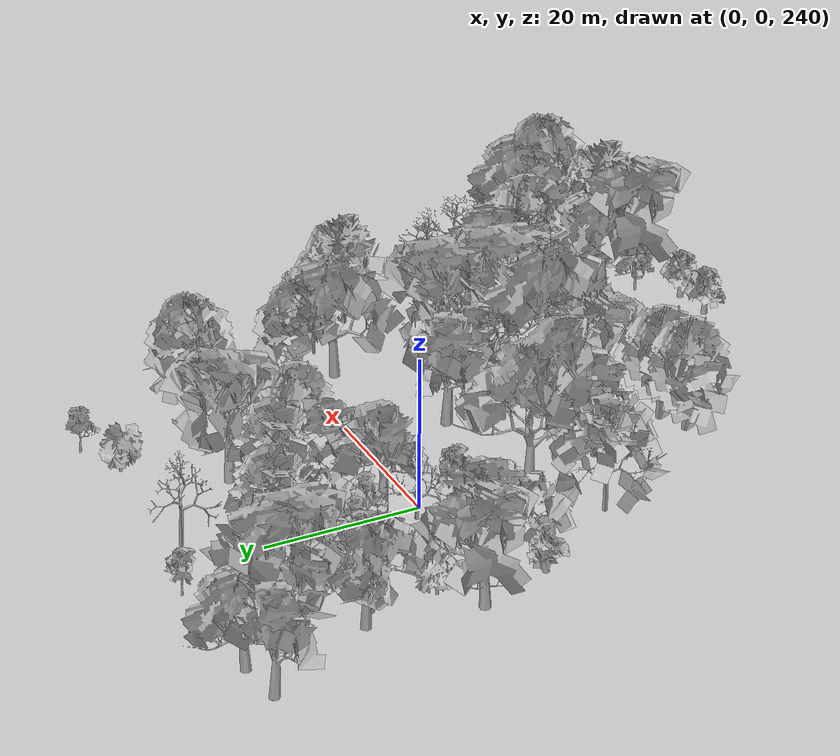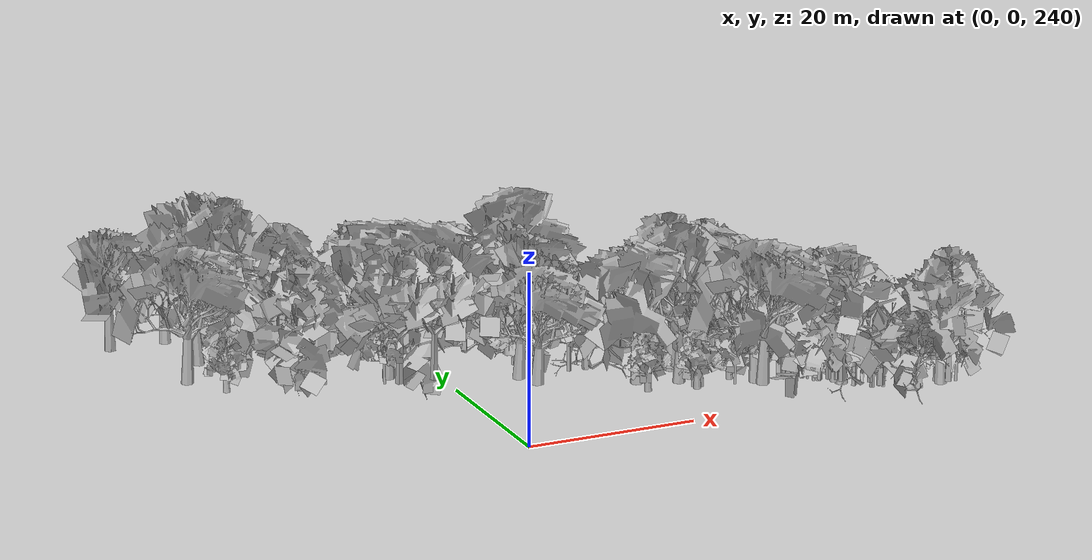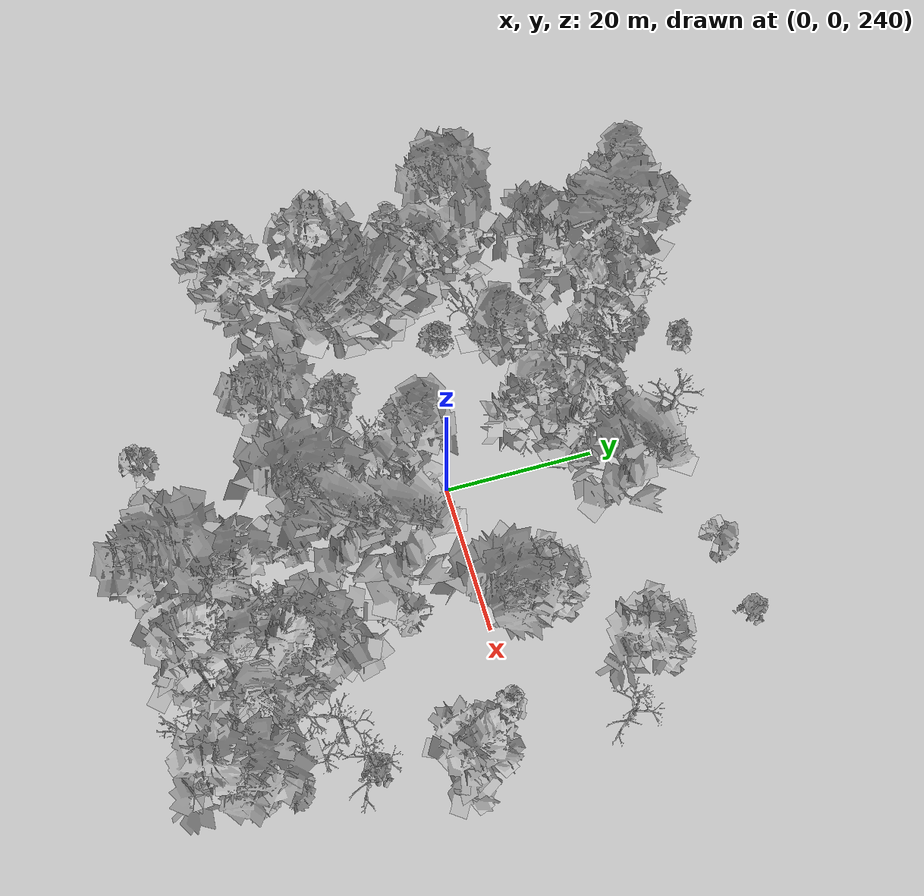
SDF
<sdf version="1.6">
 <world name="default">
  <light name="sun" type="directional">
   <pose>0 0 10 0 -0 0</pose>
   <diffuse>0.8 0.8 0.8 1</diffuse>
   <specular>0.2 0.2 0.2 1</specular>
   <attenuation>
    <range>1000</range>
    <constant>0.9</constant>
    <linear>0.01</linear>
    <quadratic>0.001</quadratic>
   </attenuation>
   <direction>-0.5 0.1 -0.9</direction>
  </light>
  <scene>
   <sky><clouds><speed>12</speed></clouds></sky>
   <ambient>0.4 0.4 0.4 1</ambient>
   <background>0.7 0.7 0.7 1</background>
   <shadows>1</shadows>
  </scene>
  <spherical_coordinates>
   <surface_model>EARTH_WGS84</surface_model>
   <latitude_deg>47.3977</latitude_deg>
   <longitude_deg>8.54559</longitude_deg>
   <elevation>0</elevation>
   <heading_deg>0</heading_deg>
  </spherical_coordinates>
  <physics name="default_physics" default="0" type="ode">
   <ode>
    <solver>
     <type>quick</type>
     <iters>100</iters>
     <sor>1.3</sor>
     <use_dynamic_moi_rescaling>0</use_dynamic_moi_rescaling>
    </solver>
    <constraints>
     <cfm>0</cfm>
     <erp>0.2</erp>
     <contact_max_correcting_vel>100</contact_max_correcting_vel>
     <contact_surface_layer>0.001</contact_surface_layer>
    </constraints>
   </ode>
   <max_step_size>0.002</max_step_size>
   <real_time_factor>1</real_time_factor>
   <real_time_update_rate>500</real_time_update_rate>
  </physics>
  <gravity>0 0 -9.8</gravity>
  <magnetic_field>6e-06 2.3e-05 -4.2e-05</magnetic_field>
  <atmosphere type="adiabatic"/>
  <model name="my_mesh0">
   <pose>20.3848 -30.238 254.827 0 0 -0.522081</pose>
   <static>1</static>
   <link name="body">
    <visual name="visual">
     <geometry><mesh><uri>model://trees/16.dae</uri><scale>1 1 1</scale></mesh></geometry>
    </visual>
    <collision name="collision">
     <geometry><mesh><uri>model://trees/16.dae</uri><scale>1 1 1</scale></mesh></geometry>
    </collision>
   </link>
  </model>
  <model name="my_mesh1">
   <pose>22.3282 -24.5852 252.556 0 -0 1.48568</pose>
   <static>1</static>
   <link name="body">
    <visual name="visual">
     <geometry><mesh><uri>model://trees/14.dae</uri><scale>1 1 1</scale></mesh></geometry>
    </visual>
    <collision name="collision">
     <geometry><mesh><uri>model://trees/14.dae</uri><scale>1 1 1</scale></mesh></geometry>
    </collision>
   </link>
  </model>
  <model name="my_mesh2">
   <pose>20.2456 -19.4819 251.527 0 0 -1.18767</pose>
   <static>1</static>
   <link name="body">
    <visual name="visual">
     <geometry><mesh><uri>model://trees/12.dae</uri><scale>1 1 1</scale></mesh></geometry>
    </visual>
    <collision name="collision">
     <geometry><mesh><uri>model://trees/12.dae</uri><scale>1 1 1</scale></mesh></geometry>
    </collision>
   </link>
  </model>
  <model name="my_mesh3">
   <pose>33.1308 -25.5653 250.639 0 0 -0.469725</pose>
   <static>1</static>
   <link name="body">
    <visual name="visual">
     <geometry><mesh><uri>model://trees/17.dae</uri><scale>1 1 1</scale></mesh></geometry>
    </visual>
    <collision name="collision">
     <geometry><mesh><uri>model://trees/17.dae</uri><scale>1 1 1</scale></mesh></geometry>
    </collision>
   </link>
  </model>
  <model name="my_mesh4">
   <pose>22.3052 -28.3729 253.895 0 -0 0.719179</pose>
   <static>1</static>
   <link name="body">
    <visual name="visual">
     <geometry><mesh><uri>model://trees/4.dae</uri><scale>1 1 1</scale></mesh></geometry>
    </visual>
    <collision name="collision">
     <geometry><mesh><uri>model://trees/4.dae</uri><scale>1 1 1</scale></mesh></geometry>
    </collision>
   </link>
  </model>
  <model name="my_mesh5">
   <pose>20.774 -21.2227 252.025 0 0 -0.654174</pose>
   <static>1</static>
   <link name="body">
    <visual name="visual">
     <geometry><mesh><uri>model://trees/8.dae</uri><scale>1 1 1</scale></mesh></geometry>
    </visual>
    <collision name="collision">
     <geometry><mesh><uri>model://trees/8.dae</uri><scale>1 1 1</scale></mesh></geometry>
    </collision>
   </link>
  </model>
  <model name="my_mesh6">
   <pose>22.9858 -22.2443 251.674 0 -0 0.049975</pose>
   <static>1</static>
   <link name="body">
    <visual name="visual">
     <geometry><mesh><uri>model://trees/5.dae</uri><scale>1 1 1</scale></mesh></geometry>
    </visual>
    <collision name="collision">
     <geometry><mesh><uri>model://trees/5.dae</uri><scale>1 1 1</scale></mesh></geometry>
    </collision>
   </link>
  </model>
  <model name="my_mesh7">
   <pose>35.5555 -17.7799 247.557 0 -0 0.187396</pose>
   <static>1</static>
   <link name="body">
    <visual name="visual">
     <geometry><mesh><uri>model://trees/3.dae</uri><scale>1 1 1</scale></mesh></geometry>
    </visual>
    <collision name="collision">
     <geometry><mesh><uri>model://trees/3.dae</uri><scale>1 1 1</scale></mesh></geometry>
    </collision>
   </link>
  </model>
  <model name="my_mesh8">
   <pose>10.3224 -15.6865 251.198 0 -0 1.11868</pose>
   <static>1</static>
   <link name="body">
    <visual name="visual">
     <geometry><mesh><uri>model://trees/10.dae</uri><scale>1 1 1</scale></mesh></geometry>
    </visual>
    <collision name="collision">
     <geometry><mesh><uri>model://trees/10.dae</uri><scale>1 1 1</scale></mesh></geometry>
    </collision>
   </link>
  </model>
  <model name="my_mesh9">
   <pose>28.956 -25.6681 251.325 0 0 -0.502206</pose>
   <static>1</static>
   <link name="body">
    <visual name="visual">
     <geometry><mesh><uri>model://trees/17.dae</uri><scale>1 1 1</scale></mesh></geometry>
    </visual>
    <collision name="collision">
     <geometry><mesh><uri>model://trees/17.dae</uri><scale>1 1 1</scale></mesh></geometry>
    </collision>
   </link>
  </model>
  <model name="my_mesh10">
   <pose>13.4311 -29.9492 255.804 0 0 -0.91012</pose>
   <static>1</static>
   <link name="body">
    <visual name="visual">
     <geometry><mesh><uri>model://trees/2.dae</uri><scale>1 1 1</scale></mesh></geometry>
    </visual>
    <collision name="collision">
     <geometry><mesh><uri>model://trees/2.dae</uri><scale>1 1 1</scale></mesh></geometry>
    </collision>
   </link>
  </model>
  <model name="my_mesh11">
   <pose>28.1996 -27.9478 252.077 0 -0 0.348153</pose>
   <static>1</static>
   <link name="body">
    <visual name="visual">
     <geometry><mesh><uri>model://trees/16.dae</uri><scale>1 1 1</scale></mesh></geometry>
    </visual>
    <collision name="collision">
     <geometry><mesh><uri>model://trees/16.dae</uri><scale>1 1 1</scale></mesh></geometry>
    </collision>
   </link>
  </model>
  <model name="my_mesh12">
   <pose>19.9809 -23.3626 252.795 0 -0 0.714869</pose>
   <static>1</static>
   <link name="body">
    <visual name="visual">
     <geometry><mesh><uri>model://trees/12.dae</uri><scale>1 1 1</scale></mesh></geometry>
    </visual>
    <collision name="collision">
     <geometry><mesh><uri>model://trees/12.dae</uri><scale>1 1 1</scale></mesh></geometry>
    </collision>
   </link>
  </model>
  <model name="my_mesh13">
   <pose>19.8323 -25.5446 253.49 0 0 -0.447991</pose>
   <static>1</static>
   <link name="body">
    <visual name="visual">
     <geometry><mesh><uri>model://trees/17.dae</uri><scale>1 1 1</scale></mesh></geometry>
    </visual>
    <collision name="collision">
     <geometry><mesh><uri>model://trees/17.dae</uri><scale>1 1 1</scale></mesh></geometry>
    </collision>
   </link>
  </model>
  <model name="my_mesh14">
   <pose>35.421 -30.5795 252.534 0 0 -0.863697</pose>
   <static>1</static>
   <link name="body">
    <visual name="visual">
     <geometry><mesh><uri>model://trees/5.dae</uri><scale>1 1 1</scale></mesh></geometry>
    </visual>
    <collision name="collision">
     <geometry><mesh><uri>model://trees/5.dae</uri><scale>1 1 1</scale></mesh></geometry>
    </collision>
   </link>
  </model>
  <model name="my_mesh15">
   <pose>27.8139 -35.4462 255.08 0 0 -0.312453</pose>
   <static>1</static>
   <link name="body">
    <visual name="visual">
     <geometry><mesh><uri>model://trees/19.dae</uri><scale>1 1 1</scale></mesh></geometry>
    </visual>
    <collision name="collision">
     <geometry><mesh><uri>model://trees/19.dae</uri><scale>1 1 1</scale></mesh></geometry>
    </collision>
   </link>
  </model>
  <model name="my_mesh16">
   <pose>17.5999 -25.4157 253.881 0 0 -0.761209</pose>
   <static>1</static>
   <link name="body">
    <visual name="visual">
     <geometry><mesh><uri>model://trees/16.dae</uri><scale>1 1 1</scale></mesh></geometry>
    </visual>
    <collision name="collision">
     <geometry><mesh><uri>model://trees/16.dae</uri><scale>1 1 1</scale></mesh></geometry>
    </collision>
   </link>
  </model>
  <model name="my_mesh17">
   <pose>27.0569 -25.4741 251.828 0 0 -1.21136</pose>
   <static>1</static>
   <link name="body">
    <visual name="visual">
     <geometry><mesh><uri>model://trees/18.dae</uri><scale>1 1 1</scale></mesh></geometry>
    </visual>
    <collision name="collision">
     <geometry><mesh><uri>model://trees/18.dae</uri><scale>1 1 1</scale></mesh></geometry>
    </collision>
   </link>
  </model>
  <model name="my_mesh18">
   <pose>8.34189 -32.582 256.818 0 0 -0.239328</pose>
   <static>1</static>
   <link name="body">
    <visual name="visual">
     <geometry><mesh><uri>model://trees/6.dae</uri><scale>1 1 1</scale></mesh></geometry>
    </visual>
    <collision name="collision">
     <geometry><mesh><uri>model://trees/6.dae</uri><scale>1 1 1</scale></mesh></geometry>
    </collision>
   </link>
  </model>
  <model name="my_mesh19">
   <pose>22.3388 -27.801 253.499 0 -0 0.737782</pose>
   <static>1</static>
   <link name="body">
    <visual name="visual">
     <geometry><mesh><uri>model://trees/0.dae</uri><scale>1 1 1</scale></mesh></geometry>
    </visual>
    <collision name="collision">
     <geometry><mesh><uri>model://trees/0.dae</uri><scale>1 1 1</scale></mesh></geometry>
    </collision>
   </link>
  </model>
  <model name="my_mesh20">
   <pose>16.5273 -35.3799 257.014 0 0 -0.506061</pose>
   <static>1</static>
   <link name="body">
    <visual name="visual">
     <geometry><mesh><uri>model://trees/5.dae</uri><scale>1 1 1</scale></mesh></geometry>
    </visual>
    <collision name="collision">
     <geometry><mesh><uri>model://trees/5.dae</uri><scale>1 1 1</scale></mesh></geometry>
    </collision>
   </link>
  </model>
  <model name="my_mesh21">
   <pose>9.32402 -22.0173 253.023 0 0 -0.854677</pose>
   <static>1</static>
   <link name="body">
    <visual name="visual">
     <geometry><mesh><uri>model://trees/7.dae</uri><scale>1 1 1</scale></mesh></geometry>
    </visual>
    <collision name="collision">
     <geometry><mesh><uri>model://trees/7.dae</uri><scale>1 1 1</scale></mesh></geometry>
    </collision>
   </link>
  </model>
  <model name="my_mesh22">
   <pose>35.2446 -18.2714 247.826 0 -0 1.15031</pose>
   <static>1</static>
   <link name="body">
    <visual name="visual">
     <geometry><mesh><uri>model://trees/17.dae</uri><scale>1 1 1</scale></mesh></geometry>
    </visual>
    <collision name="collision">
     <geometry><mesh><uri>model://trees/17.dae</uri><scale>1 1 1</scale></mesh></geometry>
    </collision>
   </link>
  </model>
  <model name="my_mesh23">
   <pose>33.3718 -30.9569 252.736 0 0 -0.127508</pose>
   <static>1</static>
   <link name="body">
    <visual name="visual">
     <geometry><mesh><uri>model://trees/8.dae</uri><scale>1 1 1</scale></mesh></geometry>
    </visual>
    <collision name="collision">
     <geometry><mesh><uri>model://trees/8.dae</uri><scale>1 1 1</scale></mesh></geometry>
    </collision>
   </link>
  </model>
  <model name="my_mesh24">
   <pose>25.5522 -23.6478 251.459 0 0 -0.21608</pose>
   <static>1</static>
   <link name="body">
    <visual name="visual">
     <geometry><mesh><uri>model://trees/7.dae</uri><scale>1 1 1</scale></mesh></geometry>
    </visual>
    <collision name="collision">
     <geometry><mesh><uri>model://trees/7.dae</uri><scale>1 1 1</scale></mesh></geometry>
    </collision>
   </link>
  </model>
  <model name="my_mesh25">
   <pose>32.9403 -33.1854 253.715 0 -0 0.323485</pose>
   <static>1</static>
   <link name="body">
    <visual name="visual">
     <geometry><mesh><uri>model://trees/14.dae</uri><scale>1 1 1</scale></mesh></geometry>
    </visual>
    <collision name="collision">
     <geometry><mesh><uri>model://trees/14.dae</uri><scale>1 1 1</scale></mesh></geometry>
    </collision>
   </link>
  </model>
  <model name="my_mesh26">
   <pose>23.7936 -32.9911 254.881 0 -0 0.992813</pose>
   <static>1</static>
   <link name="body">
    <visual name="visual">
     <geometry><mesh><uri>model://trees/16.dae</uri><scale>1 1 1</scale></mesh></geometry>
    </visual>
    <collision name="collision">
     <geometry><mesh><uri>model://trees/16.dae</uri><scale>1 1 1</scale></mesh></geometry>
    </collision>
   </link>
  </model>
  <model name="my_mesh27">
   <pose>35.096 -26.7455 251.299 0 0 -0.223568</pose>
   <static>1</static>
   <link name="body">
    <visual name="visual">
     <geometry><mesh><uri>model://trees/4.dae</uri><scale>1 1 1</scale></mesh></geometry>
    </visual>
    <collision name="collision">
     <geometry><mesh><uri>model://trees/4.dae</uri><scale>1 1 1</scale></mesh></geometry>
    </collision>
   </link>
  </model>
  <model name="my_mesh28">
   <pose>22.8681 -29.2618 253.936 0 0 -0.101964</pose>
   <static>1</static>
   <link name="body">
    <visual name="visual">
     <geometry><mesh><uri>model://trees/6.dae</uri><scale>1 1 1</scale></mesh></geometry>
    </visual>
    <collision name="collision">
     <geometry><mesh><uri>model://trees/6.dae</uri><scale>1 1 1</scale></mesh></geometry>
    </collision>
   </link>
  </model>
  <model name="my_mesh29">
   <pose>27.3505 -28.9366 252.711 0 0 -0.16594</pose>
   <static>1</static>
   <link name="body">
    <visual name="visual">
     <geometry><mesh><uri>model://trees/13.dae</uri><scale>1 1 1</scale></mesh></geometry>
    </visual>
    <collision name="collision">
     <geometry><mesh><uri>model://trees/13.dae</uri><scale>1 1 1</scale></mesh></geometry>
    </collision>
   </link>
  </model>
  <model name="my_mesh30">
   <pose>10.6677 -34.1778 257.047 0 0 -1.30038</pose>
   <static>1</static>
   <link name="body">
    <visual name="visual">
     <geometry><mesh><uri>model://trees/9.dae</uri><scale>1 1 1</scale></mesh></geometry>
    </visual>
    <collision name="collision">
     <geometry><mesh><uri>model://trees/9.dae</uri><scale>1 1 1</scale></mesh></geometry>
    </collision>
   </link>
  </model>
  <model name="my_mesh31">
   <pose>35.5688 -29.2248 252.007 0 -0 0.950878</pose>
   <static>1</static>
   <link name="body">
    <visual name="visual">
     <geometry><mesh><uri>model://trees/3.dae</uri><scale>1 1 1</scale></mesh></geometry>
    </visual>
    <collision name="collision">
     <geometry><mesh><uri>model://trees/3.dae</uri><scale>1 1 1</scale></mesh></geometry>
    </collision>
   </link>
  </model>
  <model name="my_mesh32">
   <pose>20.0769 -28.1595 254.396 0 -0 0.34804</pose>
   <static>1</static>
   <link name="body">
    <visual name="visual">
     <geometry><mesh><uri>model://trees/12.dae</uri><scale>1 1 1</scale></mesh></geometry>
    </visual>
    <collision name="collision">
     <geometry><mesh><uri>model://trees/12.dae</uri><scale>1 1 1</scale></mesh></geometry>
    </collision>
   </link>
  </model>
  <model name="my_mesh33">
   <pose>3.80426 -7.4275 251.131 0 -0 0.904415</pose>
   <static>1</static>
   <link name="body">
    <visual name="visual">
     <geometry><mesh><uri>model://trees/19.dae</uri><scale>1 1 1</scale></mesh></geometry>
    </visual>
    <collision name="collision">
     <geometry><mesh><uri>model://trees/19.dae</uri><scale>1 1 1</scale></mesh></geometry>
    </collision>
   </link>
  </model>
  <model name="my_mesh34">
   <pose>-14.4186 2.46177 250.851 0 0 -1.55554</pose>
   <static>1</static>
   <link name="body">
    <visual name="visual">
     <geometry><mesh><uri>model://trees/1.dae</uri><scale>1 1 1</scale></mesh></geometry>
    </visual>
    <collision name="collision">
     <geometry><mesh><uri>model://trees/1.dae</uri><scale>1 1 1</scale></mesh></geometry>
    </collision>
   </link>
  </model>
  <model name="my_mesh35">
   <pose>-29.1908 -8.812 253.462 0 0 -0.460366</pose>
   <static>1</static>
   <link name="body">
    <visual name="visual">
     <geometry><mesh><uri>model://trees/15.dae</uri><scale>1 1 1</scale></mesh></geometry>
    </visual>
    <collision name="collision">
     <geometry><mesh><uri>model://trees/15.dae</uri><scale>1 1 1</scale></mesh></geometry>
    </collision>
   </link>
  </model>
  <model name="my_mesh36">
   <pose>-2.66466 11.8172 247.692 0 -0 1.16565</pose>
   <static>1</static>
   <link name="body">
    <visual name="visual">
     <geometry><mesh><uri>model://trees/18.dae</uri><scale>1 1 1</scale></mesh></geometry>
    </visual>
    <collision name="collision">
     <geometry><mesh><uri>model://trees/18.dae</uri><scale>1 1 1</scale></mesh></geometry>
    </collision>
   </link>
  </model>
  <model name="my_mesh37">
   <pose>-35.8119 9.6367 249.545 0 0 -1.20076</pose>
   <static>1</static>
   <link name="body">
    <visual name="visual">
     <geometry><mesh><uri>model://trees/9.dae</uri><scale>1 1 1</scale></mesh></geometry>
    </visual>
    <collision name="collision">
     <geometry><mesh><uri>model://trees/9.dae</uri><scale>1 1 1</scale></mesh></geometry>
    </collision>
   </link>
  </model>
  <model name="my_mesh38">
   <pose>-14.1589 30.2155 244.882 0 -0 0.124423</pose>
   <static>1</static>
   <link name="body">
    <visual name="visual">
     <geometry><mesh><uri>model://trees/1.dae</uri><scale>1 1 1</scale></mesh></geometry>
    </visual>
    <collision name="collision">
     <geometry><mesh><uri>model://trees/1.dae</uri><scale>1 1 1</scale></mesh></geometry>
    </collision>
   </link>
  </model>
  <model name="my_mesh39">
   <pose>-27.4147 2.11068 250.785 0 0 -0.483798</pose>
   <static>1</static>
   <link name="body">
    <visual name="visual">
     <geometry><mesh><uri>model://trees/13.dae</uri><scale>1 1 1</scale></mesh></geometry>
    </visual>
    <collision name="collision">
     <geometry><mesh><uri>model://trees/13.dae</uri><scale>1 1 1</scale></mesh></geometry>
    </collision>
   </link>
  </model>
  <model name="my_mesh40">
   <pose>-34.4071 1.32517 251.112 0 0 -0.655381</pose>
   <static>1</static>
   <link name="body">
    <visual name="visual">
     <geometry><mesh><uri>model://trees/0.dae</uri><scale>1 1 1</scale></mesh></geometry>
    </visual>
    <collision name="collision">
     <geometry><mesh><uri>model://trees/0.dae</uri><scale>1 1 1</scale></mesh></geometry>
    </collision>
   </link>
  </model>
  <model name="my_mesh41">
   <pose>-10.7517 16.7342 247.224 0 0 -0.608142</pose>
   <static>1</static>
   <link name="body">
    <visual name="visual">
     <geometry><mesh><uri>model://trees/4.dae</uri><scale>1 1 1</scale></mesh></geometry>
    </visual>
    <collision name="collision">
     <geometry><mesh><uri>model://trees/4.dae</uri><scale>1 1 1</scale></mesh></geometry>
    </collision>
   </link>
  </model>
  <model name="my_mesh42">
   <pose>-29.0261 35.8593 244.833 0 -0 0.050236</pose>
   <static>1</static>
   <link name="body">
    <visual name="visual">
     <geometry><mesh><uri>model://trees/8.dae</uri><scale>1 1 1</scale></mesh></geometry>
    </visual>
    <collision name="collision">
     <geometry><mesh><uri>model://trees/8.dae</uri><scale>1 1 1</scale></mesh></geometry>
    </collision>
   </link>
  </model>
  <model name="my_mesh43">
   <pose>-8.37183 19.7607 246.333 0 0 -0.236964</pose>
   <static>1</static>
   <link name="body">
    <visual name="visual">
     <geometry><mesh><uri>model://trees/13.dae</uri><scale>1 1 1</scale></mesh></geometry>
    </visual>
    <collision name="collision">
     <geometry><mesh><uri>model://trees/13.dae</uri><scale>1 1 1</scale></mesh></geometry>
    </collision>
   </link>
  </model>
  <model name="my_mesh44">
   <pose>-10.3714 35.1073 243.739 0 0 -1.21015</pose>
   <static>1</static>
   <link name="body">
    <visual name="visual">
     <geometry><mesh><uri>model://trees/6.dae</uri><scale>1 1 1</scale></mesh></geometry>
    </visual>
    <collision name="collision">
     <geometry><mesh><uri>model://trees/6.dae</uri><scale>1 1 1</scale></mesh></geometry>
    </collision>
   </link>
  </model>
  <model name="my_mesh45">
   <pose>-15.4997 15.7784 248.023 0 0 -0.909987</pose>
   <static>1</static>
   <link name="body">
    <visual name="visual">
     <geometry><mesh><uri>model://trees/1.dae</uri><scale>1 1 1</scale></mesh></geometry>
    </visual>
    <collision name="collision">
     <geometry><mesh><uri>model://trees/1.dae</uri><scale>1 1 1</scale></mesh></geometry>
    </collision>
   </link>
  </model>
  <model name="my_mesh46">
   <pose>-24.5072 27.3748 246.158 0 -0 1.27724</pose>
   <static>1</static>
   <link name="body">
    <visual name="visual">
     <geometry><mesh><uri>model://trees/10.dae</uri><scale>1 1 1</scale></mesh></geometry>
    </visual>
    <collision name="collision">
     <geometry><mesh><uri>model://trees/10.dae</uri><scale>1 1 1</scale></mesh></geometry>
    </collision>
   </link>
  </model>
  <model name="my_mesh47">
   <pose>7.66498 20.8045 245.109 0 -0 0.753012</pose>
   <static>1</static>
   <link name="body">
    <visual name="visual">
     <geometry><mesh><uri>model://trees/10.dae</uri><scale>1 1 1</scale></mesh></geometry>
    </visual>
    <collision name="collision">
     <geometry><mesh><uri>model://trees/10.dae</uri><scale>1 1 1</scale></mesh></geometry>
    </collision>
   </link>
  </model>
  <model name="my_mesh48">
   <pose>1.91088 18.6257 245.767 0 -0 0.810629</pose>
   <static>1</static>
   <link name="body">
    <visual name="visual">
     <geometry><mesh><uri>model://trees/17.dae</uri><scale>1 1 1</scale></mesh></geometry>
    </visual>
    <collision name="collision">
     <geometry><mesh><uri>model://trees/17.dae</uri><scale>1 1 1</scale></mesh></geometry>
    </collision>
   </link>
  </model>
  <model name="my_mesh49">
   <pose>-1.9419 19.0789 245.871 0 -0 0.201899</pose>
   <static>1</static>
   <link name="body">
    <visual name="visual">
     <geometry><mesh><uri>model://trees/15.dae</uri><scale>1 1 1</scale></mesh></geometry>
    </visual>
    <collision name="collision">
     <geometry><mesh><uri>model://trees/15.dae</uri><scale>1 1 1</scale></mesh></geometry>
    </collision>
   </link>
  </model>
  <model name="my_mesh50">
   <pose>-6.7179 -12.1746 252.999 0 0 -1.56644</pose>
   <static>1</static>
   <link name="body">
    <visual name="visual">
     <geometry><mesh><uri>model://trees/7.dae</uri><scale>1 1 1</scale></mesh></geometry>
    </visual>
    <collision name="collision">
     <geometry><mesh><uri>model://trees/7.dae</uri><scale>1 1 1</scale></mesh></geometry>
    </collision>
   </link>
  </model>
  <model name="my_mesh51">
   <pose>-19.9579 -20.5742 257.541 0 -0 1.08002</pose>
   <static>1</static>
   <link name="body">
    <visual name="visual">
     <geometry><mesh><uri>model://trees/14.dae</uri><scale>1 1 1</scale></mesh></geometry>
    </visual>
    <collision name="collision">
     <geometry><mesh><uri>model://trees/14.dae</uri><scale>1 1 1</scale></mesh></geometry>
    </collision>
   </link>
  </model>
  <model name="my_mesh52">
   <pose>-26.1866 -22.4763 258.608 0 -0 0.977527</pose>
   <static>1</static>
   <link name="body">
    <visual name="visual">
     <geometry><mesh><uri>model://trees/6.dae</uri><scale>1 1 1</scale></mesh></geometry>
    </visual>
    <collision name="collision">
     <geometry><mesh><uri>model://trees/6.dae</uri><scale>1 1 1</scale></mesh></geometry>
    </collision>
   </link>
  </model>
  <model name="my_mesh53">
   <pose>-30.194 21.6409 247.004 0 -0 1.47367</pose>
   <static>1</static>
   <link name="body">
    <visual name="visual">
     <geometry><mesh><uri>model://trees/7.dae</uri><scale>1 1 1</scale></mesh></geometry>
    </visual>
    <collision name="collision">
     <geometry><mesh><uri>model://trees/7.dae</uri><scale>1 1 1</scale></mesh></geometry>
    </collision>
   </link>
  </model>
  <model name="my_mesh54">
   <pose>-11.2174 23.6307 245.818 0 -0 0.34215</pose>
   <static>1</static>
   <link name="body">
    <visual name="visual">
     <geometry><mesh><uri>model://trees/15.dae</uri><scale>1 1 1</scale></mesh></geometry>
    </visual>
    <collision name="collision">
     <geometry><mesh><uri>model://trees/15.dae</uri><scale>1 1 1</scale></mesh></geometry>
    </collision>
   </link>
  </model>
  <model name="my_mesh55">
   <pose>2.73785 -8.46237 251.418 0 0 -0.737428</pose>
   <static>1</static>
   <link name="body">
    <visual name="visual">
     <geometry><mesh><uri>model://trees/12.dae</uri><scale>1 1 1</scale></mesh></geometry>
    </visual>
    <collision name="collision">
     <geometry><mesh><uri>model://trees/12.dae</uri><scale>1 1 1</scale></mesh></geometry>
    </collision>
   </link>
  </model>
  <model name="my_mesh56">
   <pose>18.4181 29.8524 242.967 0 0 -0.680552</pose>
   <static>1</static>
   <link name="body">
    <visual name="visual">
     <geometry><mesh><uri>model://trees/5.dae</uri><scale>1 1 1</scale></mesh></geometry>
    </visual>
    <collision name="collision">
     <geometry><mesh><uri>model://trees/5.dae</uri><scale>1 1 1</scale></mesh></geometry>
    </collision>
   </link>
  </model>
  <model name="my_mesh57">
   <pose>-0.807788 -3.06573 251.083 0 0 -0.938531</pose>
   <static>1</static>
   <link name="body">
    <visual name="visual">
     <geometry><mesh><uri>model://trees/11.dae</uri><scale>1 1 1</scale></mesh></geometry>
    </visual>
    <collision name="collision">
     <geometry><mesh><uri>model://trees/11.dae</uri><scale>1 1 1</scale></mesh></geometry>
    </collision>
   </link>
  </model>
  <model name="my_mesh58">
   <pose>-12.1622 10.7597 248.893 0 0 -0.210146</pose>
   <static>1</static>
   <link name="body">
    <visual name="visual">
     <geometry><mesh><uri>model://trees/11.dae</uri><scale>1 1 1</scale></mesh></geometry>
    </visual>
    <collision name="collision">
     <geometry><mesh><uri>model://trees/11.dae</uri><scale>1 1 1</scale></mesh></geometry>
    </collision>
   </link>
  </model>
  <model name="my_mesh59">
   <pose>20.9921 5.32991 246.553 0 -0 0.168539</pose>
   <static>1</static>
   <link name="body">
    <visual name="visual">
     <geometry><mesh><uri>model://trees/14.dae</uri><scale>1 1 1</scale></mesh></geometry>
    </visual>
    <collision name="collision">
     <geometry><mesh><uri>model://trees/14.dae</uri><scale>1 1 1</scale></mesh></geometry>
    </collision>
   </link>
  </model>
  <model name="my_mesh60">
   <pose>-19.0556 -12.6983 254.11 0 0 -0.481971</pose>
   <static>1</static>
   <link name="body">
    <visual name="visual">
     <geometry><mesh><uri>model://trees/13.dae</uri><scale>1 1 1</scale></mesh></geometry>
    </visual>
    <collision name="collision">
     <geometry><mesh><uri>model://trees/13.dae</uri><scale>1 1 1</scale></mesh></geometry>
    </collision>
   </link>
  </model>
  <model name="my_mesh61">
   <pose>-14.404 2.95393 250.69 0 0 -0.098968</pose>
   <static>1</static>
   <link name="body">
    <visual name="visual">
     <geometry><mesh><uri>model://trees/3.dae</uri><scale>1 1 1</scale></mesh></geometry>
    </visual>
    <collision name="collision">
     <geometry><mesh><uri>model://trees/3.dae</uri><scale>1 1 1</scale></mesh></geometry>
    </collision>
   </link>
  </model>
  <model name="my_mesh62">
   <pose>-18.5677 26.724 245.585 0 0 -0.918133</pose>
   <static>1</static>
   <link name="body">
    <visual name="visual">
     <geometry><mesh><uri>model://trees/14.dae</uri><scale>1 1 1</scale></mesh></geometry>
    </visual>
    <collision name="collision">
     <geometry><mesh><uri>model://trees/14.dae</uri><scale>1 1 1</scale></mesh></geometry>
    </collision>
   </link>
  </model>
  <model name="my_mesh63">
   <pose>-26.2971 31.4319 245.861 0 0 -1.19379</pose>
   <static>1</static>
   <link name="body">
    <visual name="visual">
     <geometry><mesh><uri>model://trees/10.dae</uri><scale>1 1 1</scale></mesh></geometry>
    </visual>
    <collision name="collision">
     <geometry><mesh><uri>model://trees/10.dae</uri><scale>1 1 1</scale></mesh></geometry>
    </collision>
   </link>
  </model>
  <model name="my_mesh64">
   <pose>-25.0485 -2.36718 251.723 0 0 -0.574016</pose>
   <static>1</static>
   <link name="body">
    <visual name="visual">
     <geometry><mesh><uri>model://trees/6.dae</uri><scale>1 1 1</scale></mesh></geometry>
    </visual>
    <collision name="collision">
     <geometry><mesh><uri>model://trees/6.dae</uri><scale>1 1 1</scale></mesh></geometry>
    </collision>
   </link>
  </model>
  <model name="my_mesh65">
   <pose>-25.9973 5.93534 250.072 0 0 -0.933432</pose>
   <static>1</static>
   <link name="body">
    <visual name="visual">
     <geometry><mesh><uri>model://trees/12.dae</uri><scale>1 1 1</scale></mesh></geometry>
    </visual>
    <collision name="collision">
     <geometry><mesh><uri>model://trees/12.dae</uri><scale>1 1 1</scale></mesh></geometry>
    </collision>
   </link>
  </model>
  <model name="my_mesh66">
   <pose>12.3754 -9.43897 250.26 0 -0 1.23835</pose>
   <static>1</static>
   <link name="body">
    <visual name="visual">
     <geometry><mesh><uri>model://trees/10.dae</uri><scale>1 1 1</scale></mesh></geometry>
    </visual>
    <collision name="collision">
     <geometry><mesh><uri>model://trees/10.dae</uri><scale>1 1 1</scale></mesh></geometry>
    </collision>
   </link>
  </model>
  <model name="my_mesh67">
   <pose>-4.2988 -5.34143 251.952 0 0 -0.881153</pose>
   <static>1</static>
   <link name="body">
    <visual name="visual">
     <geometry><mesh><uri>model://trees/4.dae</uri><scale>1 1 1</scale></mesh></geometry>
    </visual>
    <collision name="collision">
     <geometry><mesh><uri>model://trees/4.dae</uri><scale>1 1 1</scale></mesh></geometry>
    </collision>
   </link>
  </model>
  <model name="my_mesh68">
   <pose>-21.8636 18.8302 247.416 0 0 -0.424757</pose>
   <static>1</static>
   <link name="body">
    <visual name="visual">
     <geometry><mesh><uri>model://trees/4.dae</uri><scale>1 1 1</scale></mesh></geometry>
    </visual>
    <collision name="collision">
     <geometry><mesh><uri>model://trees/4.dae</uri><scale>1 1 1</scale></mesh></geometry>
    </collision>
   </link>
  </model>
  <model name="my_mesh69">
   <pose>19.736 -34.2901 256.011 0 -0 1.31883</pose>
   <static>1</static>
   <link name="body">
    <visual name="visual">
     <geometry><mesh><uri>model://trees/15.dae</uri><scale>1 1 1</scale></mesh></geometry>
    </visual>
    <collision name="collision">
     <geometry><mesh><uri>model://trees/15.dae</uri><scale>1 1 1</scale></mesh></geometry>
    </collision>
   </link>
  </model>
  <model name="my_mesh70">
   <pose>19.2557 -9.82055 248.506 0 -0 1.36638</pose>
   <static>1</static>
   <link name="body">
    <visual name="visual">
     <geometry><mesh><uri>model://trees/5.dae</uri><scale>1 1 1</scale></mesh></geometry>
    </visual>
    <collision name="collision">
     <geometry><mesh><uri>model://trees/5.dae</uri><scale>1 1 1</scale></mesh></geometry>
    </collision>
   </link>
  </model>
  <model name="my_mesh71">
   <pose>31.0586 -20.3965 249.108 0 -0 0.957323</pose>
   <static>1</static>
   <link name="body">
    <visual name="visual">
     <geometry><mesh><uri>model://trees/16.dae</uri><scale>1 1 1</scale></mesh></geometry>
    </visual>
    <collision name="collision">
     <geometry><mesh><uri>model://trees/16.dae</uri><scale>1 1 1</scale></mesh></geometry>
    </collision>
   </link>
  </model>
  <model name="my_mesh72">
   <pose>35.183 13.2588 241.376 0 -0 0.688427</pose>
   <static>1</static>
   <link name="body">
    <visual name="visual">
     <geometry><mesh><uri>model://trees/18.dae</uri><scale>1 1 1</scale></mesh></geometry>
    </visual>
    <collision name="collision">
     <geometry><mesh><uri>model://trees/18.dae</uri><scale>1 1 1</scale></mesh></geometry>
    </collision>
   </link>
  </model>
  <model name="my_mesh73">
   <pose>-7.80126 -19.3106 254.862 0 0 -1.52389</pose>
   <static>1</static>
   <link name="body">
    <visual name="visual">
     <geometry><mesh><uri>model://trees/8.dae</uri><scale>1 1 1</scale></mesh></geometry>
    </visual>
    <collision name="collision">
     <geometry><mesh><uri>model://trees/8.dae</uri><scale>1 1 1</scale></mesh></geometry>
    </collision>
   </link>
  </model>
  <model name="my_mesh74">
   <pose>-0.18938 30.5583 243.327 0 0 -0.38692</pose>
   <static>1</static>
   <link name="body">
    <visual name="visual">
     <geometry><mesh><uri>model://trees/16.dae</uri><scale>1 1 1</scale></mesh></geometry>
    </visual>
    <collision name="collision">
     <geometry><mesh><uri>model://trees/16.dae</uri><scale>1 1 1</scale></mesh></geometry>
    </collision>
   </link>
  </model>
  <model name="my_mesh75">
   <pose>-16.122 8.37432 249.776 0 0 -0.861885</pose>
   <static>1</static>
   <link name="body">
    <visual name="visual">
     <geometry><mesh><uri>model://trees/17.dae</uri><scale>1 1 1</scale></mesh></geometry>
    </visual>
    <collision name="collision">
     <geometry><mesh><uri>model://trees/17.dae</uri><scale>1 1 1</scale></mesh></geometry>
    </collision>
   </link>
  </model>
  <model name="my_mesh76">
   <pose>20.6855 0.999575 247.269 0 -0 0.029297</pose>
   <static>1</static>
   <link name="body">
    <visual name="visual">
     <geometry><mesh><uri>model://trees/9.dae</uri><scale>1 1 1</scale></mesh></geometry>
    </visual>
    <collision name="collision">
     <geometry><mesh><uri>model://trees/9.dae</uri><scale>1 1 1</scale></mesh></geometry>
    </collision>
   </link>
  </model>
  <model name="my_mesh77">
   <pose>3.90336 14.4229 246.597 0 -0 1.27812</pose>
   <static>1</static>
   <link name="body">
    <visual name="visual">
     <geometry><mesh><uri>model://trees/14.dae</uri><scale>1 1 1</scale></mesh></geometry>
    </visual>
    <collision name="collision">
     <geometry><mesh><uri>model://trees/14.dae</uri><scale>1 1 1</scale></mesh></geometry>
    </collision>
   </link>
  </model>
  <model name="my_mesh78">
   <pose>-30.2549 12.8119 248.98 0 -0 1.11969</pose>
   <static>1</static>
   <link name="body">
    <visual name="visual">
     <geometry><mesh><uri>model://trees/5.dae</uri><scale>1 1 1</scale></mesh></geometry>
    </visual>
    <collision name="collision">
     <geometry><mesh><uri>model://trees/5.dae</uri><scale>1 1 1</scale></mesh></geometry>
    </collision>
   </link>
  </model>
  <model name="my_mesh79">
   <pose>-27.7948 20.1057 247.317 0 -0 0.706487</pose>
   <static>1</static>
   <link name="body">
    <visual name="visual">
     <geometry><mesh><uri>model://trees/8.dae</uri><scale>1 1 1</scale></mesh></geometry>
    </visual>
    <collision name="collision">
     <geometry><mesh><uri>model://trees/8.dae</uri><scale>1 1 1</scale></mesh></geometry>
    </collision>
   </link>
  </model>
  <model name="my_mesh80">
   <pose>35.932 -7.5619 244.371 0 -0 1.43415</pose>
   <static>1</static>
   <link name="body">
    <visual name="visual">
     <geometry><mesh><uri>model://trees/15.dae</uri><scale>1 1 1</scale></mesh></geometry>
    </visual>
    <collision name="collision">
     <geometry><mesh><uri>model://trees/15.dae</uri><scale>1 1 1</scale></mesh></geometry>
    </collision>
   </link>
  </model>
  <model name="my_mesh81">
   <pose>-12.0536 12.7628 248.41 0 0 -1.22303</pose>
   <static>1</static>
   <link name="body">
    <visual name="visual">
     <geometry><mesh><uri>model://trees/0.dae</uri><scale>1 1 1</scale></mesh></geometry>
    </visual>
    <collision name="collision">
     <geometry><mesh><uri>model://trees/0.dae</uri><scale>1 1 1</scale></mesh></geometry>
    </collision>
   </link>
  </model>
  <model name="my_mesh82">
   <pose>27.8078 30.9382 240.754 0 0 -0.252014</pose>
   <static>1</static>
   <link name="body">
    <visual name="visual">
     <geometry><mesh><uri>model://trees/3.dae</uri><scale>1 1 1</scale></mesh></geometry>
    </visual>
    <collision name="collision">
     <geometry><mesh><uri>model://trees/3.dae</uri><scale>1 1 1</scale></mesh></geometry>
    </collision>
   </link>
  </model>
  <model name="my_mesh83">
   <pose>-24.2282 -21.6255 258.073 0 -0 1.06372</pose>
   <static>1</static>
   <link name="body">
    <visual name="visual">
     <geometry><mesh><uri>model://trees/14.dae</uri><scale>1 1 1</scale></mesh></geometry>
    </visual>
    <collision name="collision">
     <geometry><mesh><uri>model://trees/14.dae</uri><scale>1 1 1</scale></mesh></geometry>
    </collision>
   </link>
  </model>
  <model name="my_mesh84">
   <pose>-16.3121 -9.52425 253.119 0 0 -0.659856</pose>
   <static>1</static>
   <link name="body">
    <visual name="visual">
     <geometry><mesh><uri>model://trees/10.dae</uri><scale>1 1 1</scale></mesh></geometry>
    </visual>
    <collision name="collision">
     <geometry><mesh><uri>model://trees/10.dae</uri><scale>1 1 1</scale></mesh></geometry>
    </collision>
   </link>
  </model>
  <model name="my_mesh85">
   <pose>18.4487 -29.316 254.852 0 0 -0.734697</pose>
   <static>1</static>
   <link name="body">
    <visual name="visual">
     <geometry><mesh><uri>model://trees/3.dae</uri><scale>1 1 1</scale></mesh></geometry>
    </visual>
    <collision name="collision">
     <geometry><mesh><uri>model://trees/3.dae</uri><scale>1 1 1</scale></mesh></geometry>
    </collision>
   </link>
  </model>
  <model name="my_mesh86">
   <pose>-18.419 -4.70779 252.262 0 0 -0.358758</pose>
   <static>1</static>
   <link name="body">
    <visual name="visual">
     <geometry><mesh><uri>model://trees/10.dae</uri><scale>1 1 1</scale></mesh></geometry>
    </visual>
    <collision name="collision">
     <geometry><mesh><uri>model://trees/10.dae</uri><scale>1 1 1</scale></mesh></geometry>
    </collision>
   </link>
  </model>
  <model name="my_mesh87">
   <pose>3.86061 -18.8021 253.054 0 -0 0.222779</pose>
   <static>1</static>
   <link name="body">
    <visual name="visual">
     <geometry><mesh><uri>model://trees/9.dae</uri><scale>1 1 1</scale></mesh></geometry>
    </visual>
    <collision name="collision">
     <geometry><mesh><uri>model://trees/9.dae</uri><scale>1 1 1</scale></mesh></geometry>
    </collision>
   </link>
  </model>
  <model name="my_mesh88">
   <pose>-20.2862 33.6585 244.908 0 -0 1.38786</pose>
   <static>1</static>
   <link name="body">
    <visual name="visual">
     <geometry><mesh><uri>model://trees/19.dae</uri><scale>1 1 1</scale></mesh></geometry>
    </visual>
    <collision name="collision">
     <geometry><mesh><uri>model://trees/19.dae</uri><scale>1 1 1</scale></mesh></geometry>
    </collision>
   </link>
  </model>
  <model name="my_mesh89">
   <pose>-24.8679 20.2833 247.172 0 -0 1.23645</pose>
   <static>1</static>
   <link name="body">
    <visual name="visual">
     <geometry><mesh><uri>model://trees/13.dae</uri><scale>1 1 1</scale></mesh></geometry>
    </visual>
    <collision name="collision">
     <geometry><mesh><uri>model://trees/13.dae</uri><scale>1 1 1</scale></mesh></geometry>
    </collision>
   </link>
  </model>
  <model name="my_mesh90">
   <pose>-3.01621 -35.6093 258.749 0 -0 1.22047</pose>
   <static>1</static>
   <link name="body">
    <visual name="visual">
     <geometry><mesh><uri>model://trees/0.dae</uri><scale>1 1 1</scale></mesh></geometry>
    </visual>
    <collision name="collision">
     <geometry><mesh><uri>model://trees/0.dae</uri><scale>1 1 1</scale></mesh></geometry>
    </collision>
   </link>
  </model>
  <model name="my_mesh91">
   <pose>-35.7207 35.4947 245.008 0 0 -0.722858</pose>
   <static>1</static>
   <link name="body">
    <visual name="visual">
     <geometry><mesh><uri>model://trees/11.dae</uri><scale>1 1 1</scale></mesh></geometry>
    </visual>
    <collision name="collision">
     <geometry><mesh><uri>model://trees/11.dae</uri><scale>1 1 1</scale></mesh></geometry>
    </collision>
   </link>
  </model>
  <model name="my_mesh92">
   <pose>31.1587 -1.28753 244.169 0 -0 1.14626</pose>
   <static>1</static>
   <link name="body">
    <visual name="visual">
     <geometry><mesh><uri>model://trees/2.dae</uri><scale>1 1 1</scale></mesh></geometry>
    </visual>
    <collision name="collision">
     <geometry><mesh><uri>model://trees/2.dae</uri><scale>1 1 1</scale></mesh></geometry>
    </collision>
   </link>
  </model>
  <model name="my_mesh93">
   <pose>29.1797 15.7582 243.092 0 -0 0.088959</pose>
   <static>1</static>
   <link name="body">
    <visual name="visual">
     <geometry><mesh><uri>model://trees/14.dae</uri><scale>1 1 1</scale></mesh></geometry>
    </visual>
    <collision name="collision">
     <geometry><mesh><uri>model://trees/14.dae</uri><scale>1 1 1</scale></mesh></geometry>
    </collision>
   </link>
  </model>
  <model name="my_mesh94">
   <pose>2.56603 -35.484 258.168 0 -0 0.904505</pose>
   <static>1</static>
   <link name="body">
    <visual name="visual">
     <geometry><mesh><uri>model://trees/1.dae</uri><scale>1 1 1</scale></mesh></geometry>
    </visual>
    <collision name="collision">
     <geometry><mesh><uri>model://trees/1.dae</uri><scale>1 1 1</scale></mesh></geometry>
    </collision>
   </link>
  </model>
  <model name="my_mesh95">
   <pose>18.5022 -11.4037 248.983 0 -0 1.4545</pose>
   <static>1</static>
   <link name="body">
    <visual name="visual">
     <geometry><mesh><uri>model://trees/1.dae</uri><scale>1 1 1</scale></mesh></geometry>
    </visual>
    <collision name="collision">
     <geometry><mesh><uri>model://trees/1.dae</uri><scale>1 1 1</scale></mesh></geometry>
    </collision>
   </link>
  </model>
  <model name="my_mesh96">
   <pose>-2.60323 11.6741 247.928 0 -0 0.203408</pose>
   <static>1</static>
   <link name="body">
    <visual name="visual">
     <geometry><mesh><uri>model://trees/13.dae</uri><scale>1 1 1</scale></mesh></geometry>
    </visual>
    <collision name="collision">
     <geometry><mesh><uri>model://trees/13.dae</uri><scale>1 1 1</scale></mesh></geometry>
    </collision>
   </link>
  </model>
  <model name="my_mesh97">
   <pose>0.186634 -9.86517 252.043 0 0 -0.096644</pose>
   <static>1</static>
   <link name="body">
    <visual name="visual">
     <geometry><mesh><uri>model://trees/16.dae</uri><scale>1 1 1</scale></mesh></geometry>
    </visual>
    <collision name="collision">
     <geometry><mesh><uri>model://trees/16.dae</uri><scale>1 1 1</scale></mesh></geometry>
    </collision>
   </link>
  </model>
  <model name="my_mesh98">
   <pose>11.9683 -30.0671 255.735 0 -0 0.353715</pose>
   <static>1</static>
   <link name="body">
    <visual name="visual">
     <geometry><mesh><uri>model://trees/8.dae</uri><scale>1 1 1</scale></mesh></geometry>
    </visual>
    <collision name="collision">
     <geometry><mesh><uri>model://trees/8.dae</uri><scale>1 1 1</scale></mesh></geometry>
    </collision>
   </link>
  </model>
 </world>
</sdf>
